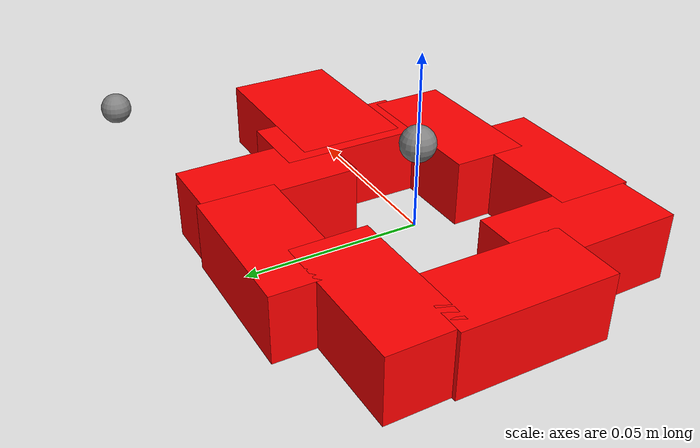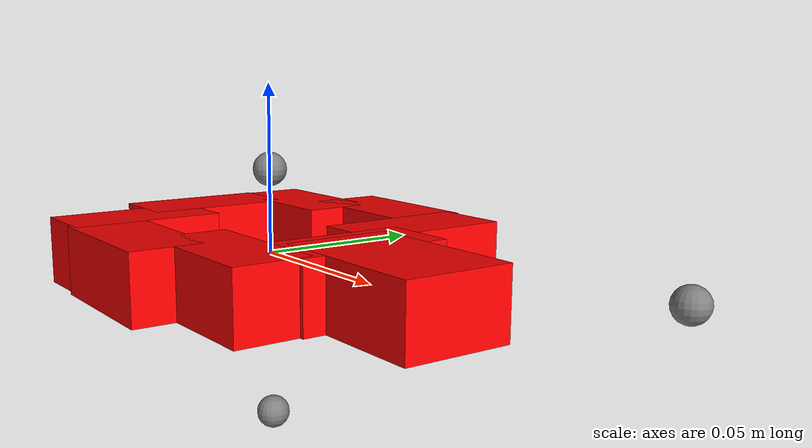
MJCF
<!-- sample of a general object defined in mujoco -->
<mujoco model="round-nut">
	<asset>
		<texture file="../textures/metal.png" type="2d" name="tex-metal"/>
		<material name="metal" reflectance="0.7" texrepeat="1 1" texture="tex-metal" texuniform="true"/>
	</asset>
	<worldbody>
		<body>
			<body name="collision">
				<geom pos="-0.04245 0 0.0" size="0.01125 0.0225 0.01" type="box" solimp="0.998 0.998 0.001" solref="0.02 1" density="100" friction="0.95 0.3 0.1" rgba="1 0 0 1" group="1" condim="4"/>
				<geom pos="0.04245 0 0.0" size="0.01125 0.0225 0.01" type="box" solimp="0.998 0.998 0.001" solref="0.02 1" density="100" friction="0.95 0.3 0.1" rgba="1 0 0 1" group="1" condim="4"/>
				<geom pos="0 -0.04245 0.0" size="0.0225 0.01125 0.01" type="box" solimp="0.998 0.998 0.001" solref="0.02 1" density="100" friction="0.95 0.3 0.1" rgba="1 0 0 1" group="1" condim="4"/>
				<geom pos="0 0.04245 0.0" size="0.0225 0.01125 0.01" type="box" solimp="0.998 0.998 0.001" solref="0.02 1" density="100" friction="0.95 0.3 0.1" rgba="1 0 0 1" group="1" condim="4"/>

				<geom pos="-0.03 -0.03 0.0" size="0.01125 0.0225 0.01" axisangle='0 0 1 0.785398' type="box" solimp="0.998 0.998 0.001" solref="0.02 1" density="100" friction="0.95 0.3 0.1" rgba="1 0 0 1" group="1" condim="4"/>
				<geom pos="0.03 0.03 0.0" size="0.01125 0.0225 0.01" axisangle='0 0 1 0.785398' type="box" solimp="0.998 0.998 0.001" solref="0.02 1" density="100" friction="0.95 0.3 0.1" rgba="1 0 0 1" group="1" condim="4"/>
				<geom pos="0.03 -0.03 0.0" size="0.0225 0.01125 0.01" axisangle='0 0 1 0.785398' type="box" solimp="0.998 0.998 0.001" solref="0.02 1" density="100" friction="0.95 0.3 0.1" rgba="1 0 0 1" group="1" condim="4"/>
				<geom pos="-0.03 0.03 0.0" size="0.0225 0.01125 0.01" axisangle='0 0 1 0.785398' type="box" solimp="0.998 0.998 0.001" solref="0.02 1" density="100" friction="0.95 0.3 0.1" rgba="1 0 0 1" group="1" condim="4"/>
				<geom pos="0.06 0 0.0" size="0.02525 0.015875 0.01" type="box" solimp="0.998 0.998 0.001" solref="0.02 1" density="100" friction="0.95 0.3 0.1" rgba="1 0 0 1" group="1" condim="4"/>
			</body>
			<site pos="0 0 -0.05" name="bottom_site"/>
			<site pos="0 0 0.025" name="top_site"/>
			<site pos="0.11 0.05 0" name="horizontal_radius_site"/>
		</body>
	</worldbody>
</mujoco>
